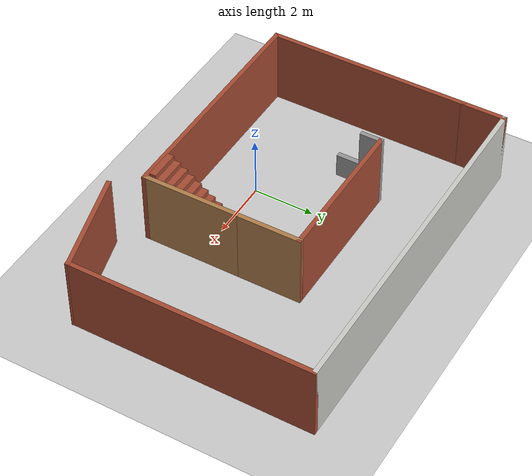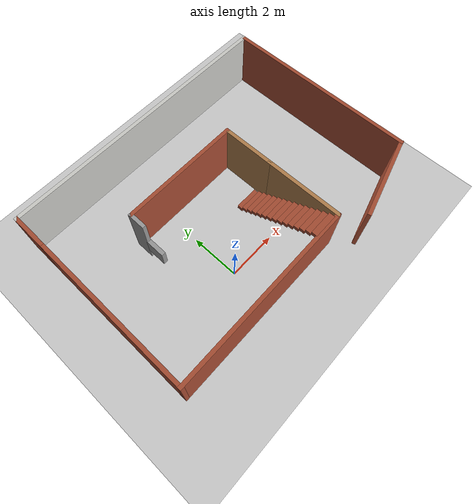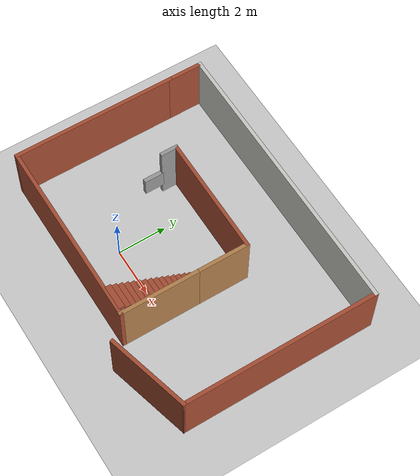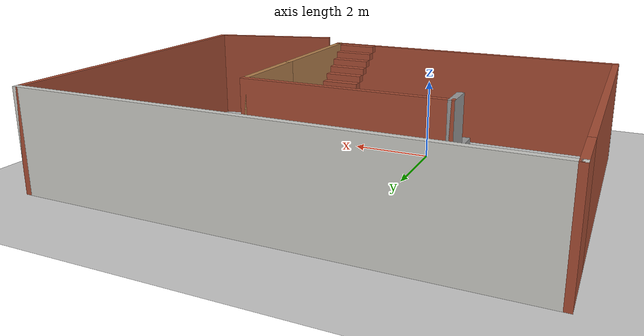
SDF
<sdf version="1.7">
 <world name="default">
  <light name="sun" type="directional">
   <pose>0 0 10 0 -0 0</pose>
   <diffuse>0.8 0.8 0.8 1</diffuse>
   <specular>0.2 0.2 0.2 1</specular>
   <attenuation>
    <range>1000</range>
    <constant>0.9</constant>
    <linear>0.01</linear>
    <quadratic>0.001</quadratic>
   </attenuation>
   <direction>-0.5 0.1 -0.9</direction>
   <spot><inner_angle>0</inner_angle><outer_angle>0</outer_angle><falloff>0</falloff></spot>
  </light>
  <model name="ground_plane">
   <static>1</static>
   <link name="link">
    <collision name="collision">
     <geometry><plane><normal>0 0 1</normal><size>100 100</size></plane></geometry>
     <surface>
      <contact><collide_bitmask>65535</collide_bitmask></contact>
      <friction><ode><mu>100</mu><mu2>50</mu2></ode></friction>
     </surface>
    </collision>
    <visual name="visual">
     <cast_shadows>0</cast_shadows>
     <geometry><plane><normal>0 0 1</normal><size>100 100</size></plane></geometry>
     <material>
      <script><uri>file://media/materials/scripts/gazebo.material</uri><name>Gazebo/Grey</name></script>
     </material>
    </visual>
   </link>
  </model>
  <gravity>0 0 -9.8</gravity>
  <magnetic_field>6e-06 2.3e-05 -4.2e-05</magnetic_field>
  <atmosphere type="adiabatic"/>
  <physics type="ode">
   <max_step_size>0.001</max_step_size>
   <real_time_factor>1</real_time_factor>
   <real_time_update_rate>1000</real_time_update_rate>
  </physics>
  <scene><ambient>0.4 0.4 0.4 1</ambient><background>0.7 0.7 0.7 1</background><shadows>1</shadows></scene>
  <spherical_coordinates>
   <surface_model>EARTH_WGS84</surface_model>
   <latitude_deg>0</latitude_deg>
   <longitude_deg>0</longitude_deg>
   <elevation>0</elevation>
   <heading_deg>0</heading_deg>
  </spherical_coordinates>
  <model name="myModel">
   <pose>1.53476 1.83643 0 0 -0 0</pose>
   <link name="Stairs_0">
    <visual name="Stairs_0_Visual_0">
     <pose>1.12473 -0.163848 0.083333 0 -0 0</pose>
     <geometry><box><size>1 0.233333 0.166667</size></box></geometry>
     <material>
      <script><uri>file://media/materials/scripts/gazebo.material</uri><name>Gazebo/Bricks</name></script>
      <ambient>1 1 1 1</ambient>
     </material>
     <meta><layer>0</layer></meta>
    </visual>
    <collision name="Stairs_0_Collision_0">
     <geometry><box><size>1 0.233333 0.166667</size></box></geometry>
     <pose>1.12473 -0.163848 0.083333 0 -0 0</pose>
    </collision>
    <visual name="Stairs_0_Visual_1">
     <pose>1.12473 -0.397181 0.25 0 -0 0</pose>
     <geometry><box><size>1 0.233333 0.166667</size></box></geometry>
     <material>
      <script><uri>file://media/materials/scripts/gazebo.material</uri><name>Gazebo/Bricks</name></script>
      <ambient>1 1 1 1</ambient>
     </material>
     <meta><layer>0</layer></meta>
    </visual>
    <collision name="Stairs_0_Collision_1">
     <geometry><box><size>1 0.233333 0.166667</size></box></geometry>
     <pose>1.12473 -0.397181 0.25 0 -0 0</pose>
    </collision>
    <visual name="Stairs_0_Visual_2">
     <pose>1.12473 -0.630514 0.416667 0 -0 0</pose>
     <geometry><box><size>1 0.233333 0.166667</size></box></geometry>
     <material>
      <script><uri>file://media/materials/scripts/gazebo.material</uri><name>Gazebo/Bricks</name></script>
      <ambient>1 1 1 1</ambient>
     </material>
     <meta><layer>0</layer></meta>
    </visual>
    <collision name="Stairs_0_Collision_2">
     <geometry><box><size>1 0.233333 0.166667</size></box></geometry>
     <pose>1.12473 -0.630514 0.416667 0 -0 0</pose>
    </collision>
    <visual name="Stairs_0_Visual_3">
     <pose>1.12473 -0.863847 0.583333 0 -0 0</pose>
     <geometry><box><size>1 0.233333 0.166667</size></box></geometry>
     <material>
      <script><uri>file://media/materials/scripts/gazebo.material</uri><name>Gazebo/Bricks</name></script>
      <ambient>1 1 1 1</ambient>
     </material>
     <meta><layer>0</layer></meta>
    </visual>
    <collision name="Stairs_0_Collision_3">
     <geometry><box><size>1 0.233333 0.166667</size></box></geometry>
     <pose>1.12473 -0.863847 0.583333 0 -0 0</pose>
    </collision>
    <visual name="Stairs_0_Visual_4">
     <pose>1.12473 -1.09718 0.75 0 -0 0</pose>
     <geometry><box><size>1 0.233333 0.166667</size></box></geometry>
     <material>
      <script><uri>file://media/materials/scripts/gazebo.material</uri><name>Gazebo/Bricks</name></script>
      <ambient>1 1 1 1</ambient>
     </material>
     <meta><layer>0</layer></meta>
    </visual>
    <collision name="Stairs_0_Collision_4">
     <geometry><box><size>1 0.233333 0.166667</size></box></geometry>
     <pose>1.12473 -1.09718 0.75 0 -0 0</pose>
    </collision>
    <visual name="Stairs_0_Visual_5">
     <pose>1.12473 -1.33051 0.916667 0 -0 0</pose>
     <geometry><box><size>1 0.233333 0.166667</size></box></geometry>
     <material>
      <script><uri>file://media/materials/scripts/gazebo.material</uri><name>Gazebo/Bricks</name></script>
      <ambient>1 1 1 1</ambient>
     </material>
     <meta><layer>0</layer></meta>
    </visual>
    <collision name="Stairs_0_Collision_5">
     <geometry><box><size>1 0.233333 0.166667</size></box></geometry>
     <pose>1.12473 -1.33051 0.916667 0 -0 0</pose>
    </collision>
    <visual name="Stairs_0_Visual_6">
     <pose>1.12473 -1.56385 1.08333 0 -0 0</pose>
     <geometry><box><size>1 0.233333 0.166667</size></box></geometry>
     <material>
      <script><uri>file://media/materials/scripts/gazebo.material</uri><name>Gazebo/Bricks</name></script>
      <ambient>1 1 1 1</ambient>
     </material>
     <meta><layer>0</layer></meta>
    </visual>
    <collision name="Stairs_0_Collision_6">
     <geometry><box><size>1 0.233333 0.166667</size></box></geometry>
     <pose>1.12473 -1.56385 1.08333 0 -0 0</pose>
    </collision>
    <visual name="Stairs_0_Visual_7">
     <pose>1.12473 -1.79718 1.25 0 -0 0</pose>
     <geometry><box><size>1 0.233333 0.166667</size></box></geometry>
     <material>
      <script><uri>file://media/materials/scripts/gazebo.material</uri><name>Gazebo/Bricks</name></script>
      <ambient>1 1 1 1</ambient>
     </material>
     <meta><layer>0</layer></meta>
    </visual>
    <collision name="Stairs_0_Collision_7">
     <geometry><box><size>1 0.233333 0.166667</size></box></geometry>
     <pose>1.12473 -1.79718 1.25 0 -0 0</pose>
    </collision>
    <visual name="Stairs_0_Visual_8">
     <pose>1.12473 -2.03051 1.41667 0 -0 0</pose>
     <geometry><box><size>1 0.233333 0.166667</size></box></geometry>
     <material>
      <script><uri>file://media/materials/scripts/gazebo.material</uri><name>Gazebo/Bricks</name></script>
      <ambient>1 1 1 1</ambient>
     </material>
     <meta><layer>0</layer></meta>
    </visual>
    <collision name="Stairs_0_Collision_8">
     <geometry><box><size>1 0.233333 0.166667</size></box></geometry>
     <pose>1.12473 -2.03051 1.41667 0 -0 0</pose>
    </collision>
    <visual name="Stairs_0_Visual_9">
     <pose>1.12473 -2.26385 1.58333 0 -0 0</pose>
     <geometry><box><size>1 0.233333 0.166667</size></box></geometry>
     <material>
      <script><uri>file://media/materials/scripts/gazebo.material</uri><name>Gazebo/Bricks</name></script>
      <ambient>1 1 1 1</ambient>
     </material>
     <meta><layer>0</layer></meta>
    </visual>
    <collision name="Stairs_0_Collision_9">
     <geometry><box><size>1 0.233333 0.166667</size></box></geometry>
     <pose>1.12473 -2.26385 1.58333 0 -0 0</pose>
    </collision>
    <visual name="Stairs_0_Visual_10">
     <pose>1.12473 -2.49718 1.75 0 -0 0</pose>
     <geometry><box><size>1 0.233333 0.166667</size></box></geometry>
     <material>
      <script><uri>file://media/materials/scripts/gazebo.material</uri><name>Gazebo/Bricks</name></script>
      <ambient>1 1 1 1</ambient>
     </material>
     <meta><layer>0</layer></meta>
    </visual>
    <collision name="Stairs_0_Collision_10">
     <geometry><box><size>1 0.233333 0.166667</size></box></geometry>
     <pose>1.12473 -2.49718 1.75 0 -0 0</pose>
    </collision>
    <visual name="Stairs_0_Visual_11">
     <pose>1.12473 -2.73051 1.91667 0 -0 0</pose>
     <geometry><box><size>1 0.233333 0.166667</size></box></geometry>
     <material>
      <script><uri>file://media/materials/scripts/gazebo.material</uri><name>Gazebo/Bricks</name></script>
      <ambient>1 1 1 1</ambient>
     </material>
     <meta><layer>0</layer></meta>
    </visual>
    <collision name="Stairs_0_Collision_11">
     <geometry><box><size>1 0.233333 0.166667</size></box></geometry>
     <pose>1.12473 -2.73051 1.91667 0 -0 0</pose>
    </collision>
    <visual name="Stairs_0_Visual_12">
     <pose>1.12473 -2.96385 2.08333 0 -0 0</pose>
     <geometry><box><size>1 0.233333 0.166667</size></box></geometry>
     <material>
      <script><uri>file://media/materials/scripts/gazebo.material</uri><name>Gazebo/Bricks</name></script>
      <ambient>1 1 1 1</ambient>
     </material>
     <meta><layer>0</layer></meta>
    </visual>
    <collision name="Stairs_0_Collision_12">
     <geometry><box><size>1 0.233333 0.166667</size></box></geometry>
     <pose>1.12473 -2.96385 2.08333 0 -0 0</pose>
    </collision>
    <visual name="Stairs_0_Visual_13">
     <pose>1.12473 -3.19718 2.25 0 -0 0</pose>
     <geometry><box><size>1 0.233333 0.166667</size></box></geometry>
     <material>
      <script><uri>file://media/materials/scripts/gazebo.material</uri><name>Gazebo/Bricks</name></script>
      <ambient>1 1 1 1</ambient>
     </material>
     <meta><layer>0</layer></meta>
    </visual>
    <collision name="Stairs_0_Collision_13">
     <geometry><box><size>1 0.233333 0.166667</size></box></geometry>
     <pose>1.12473 -3.19718 2.25 0 -0 0</pose>
    </collision>
    <visual name="Stairs_0_Visual_14">
     <pose>1.12473 -3.43051 2.41667 0 -0 0</pose>
     <geometry><box><size>1 0.233333 0.166667</size></box></geometry>
     <material>
      <script><uri>file://media/materials/scripts/gazebo.material</uri><name>Gazebo/Bricks</name></script>
      <ambient>1 1 1 1</ambient>
     </material>
     <meta><layer>0</layer></meta>
    </visual>
    <collision name="Stairs_0_Collision_14">
     <geometry><box><size>1 0.233333 0.166667</size></box></geometry>
     <pose>1.12473 -3.43051 2.41667 0 -0 0</pose>
    </collision>
   </link>
   <link name="Wall_1">
    <collision name="Wall_1_Collision">
     <geometry><box><size>0.75 0.15 2.5</size></box></geometry>
     <pose>0 0 1.25 0 -0 0</pose>
    </collision>
    <visual name="Wall_1_Visual">
     <pose>0 0 1.25 0 -0 0</pose>
     <geometry><box><size>0.75 0.15 2.5</size></box></geometry>
     <material>
      <script><uri>file://media/materials/scripts/gazebo.material</uri><name>Gazebo/Grey</name></script>
      <ambient>1 1 1 1</ambient>
     </material>
     <meta><layer>0</layer></meta>
    </visual>
    <pose>-3.05843 1.31695 0 0 -0 1.5708</pose>
   </link>
   <link name="Wall_10">
    <collision name="Wall_10_Collision">
     <geometry><box><size>8 0.15 2.5</size></box></geometry>
     <pose>0 0 1.25 0 -0 0</pose>
    </collision>
    <visual name="Wall_10_Visual">
     <pose>0 0 1.25 0 -0 0</pose>
     <geometry><box><size>8 0.15 2.5</size></box></geometry>
     <material>
      <script><uri>file://media/materials/scripts/gazebo.material</uri><name>Gazebo/Bricks</name></script>
      <ambient>1 1 1 1</ambient>
     </material>
     <meta><layer>0</layer></meta>
    </visual>
    <pose>5.79157 0.44195 0 0 -0 -1.5708</pose>
   </link>
   <link name="Wall_11">
    <collision name="Wall_11_Collision">
     <geometry><box><size>3.5 0.15 2.5</size></box></geometry>
     <pose>0 0 1.25 0 -0 0</pose>
    </collision>
    <visual name="Wall_11_Visual">
     <pose>0 0 1.25 0 -0 0</pose>
     <geometry><box><size>3.5 0.15 2.5</size></box></geometry>
     <material>
      <script><uri>file://media/materials/scripts/gazebo.material</uri><name>Gazebo/Bricks</name></script>
      <ambient>1 1 1 1</ambient>
     </material>
     <meta><layer>0</layer></meta>
    </visual>
    <pose>4.17365 -3.91657 0 0 -0 -2.87979</pose>
   </link>
   <link name="Wall_2">
    <collision name="Wall_2_Collision">
     <geometry><box><size>5 0.15 2.5</size></box></geometry>
     <pose>0 0 1.25 0 -0 0</pose>
    </collision>
    <visual name="Wall_2_Visual">
     <pose>0 0 1.25 0 -0 0</pose>
     <geometry><box><size>5 0.15 2.5</size></box></geometry>
     <material>
      <script><uri>file://media/materials/scripts/gazebo.material</uri><name>Gazebo/Bricks</name></script>
      <ambient>1 1 1 1</ambient>
     </material>
     <meta><layer>0</layer></meta>
    </visual>
    <pose>-0.633428 1.61695 0 0 -0 0</pose>
   </link>
   <link name="Wall_3">
    <collision name="Wall_3_Collision">
     <geometry><box><size>2.25 0.15 2.5</size></box></geometry>
     <pose>0 0 1.25 0 -0 0</pose>
    </collision>
    <visual name="Wall_3_Visual">
     <pose>0 0 1.25 0 -0 0</pose>
     <geometry><box><size>2.25 0.15 2.5</size></box></geometry>
     <material>
      <script><uri>file://media/materials/scripts/gazebo.material</uri><name>Gazebo/Wood</name></script>
      <ambient>1 1 1 1</ambient>
     </material>
     <meta><layer>0</layer></meta>
    </visual>
    <pose>1.79157 0.56695 0 0 -0 -1.5708</pose>
   </link>
   <link name="Wall_5">
    <collision name="Wall_5_Collision">
     <geometry><box><size>3.25 0.15 2.5</size></box></geometry>
     <pose>0 0 1.25 0 -0 0</pose>
    </collision>
    <visual name="Wall_5_Visual">
     <pose>0 0 1.25 0 -0 0</pose>
     <geometry><box><size>3.25 0.15 2.5</size></box></geometry>
     <material>
      <script><uri>file://media/materials/scripts/gazebo.material</uri><name>Gazebo/Wood</name></script>
      <ambient>1 1 1 1</ambient>
     </material>
     <meta><layer>0</layer></meta>
    </visual>
    <pose>1.79157 -2.03305 0 0 -0 -1.5708</pose>
   </link>
   <link name="Wall_6">
    <collision name="Wall_6_Collision">
     <geometry><box><size>7.75 0.15 2.5</size></box></geometry>
     <pose>0 0 1.25 0 -0 0</pose>
    </collision>
    <visual name="Wall_6_Visual">
     <pose>0 0 1.25 0 -0 0</pose>
     <geometry><box><size>7.75 0.15 2.5</size></box></geometry>
     <material>
      <script><uri>file://media/materials/scripts/gazebo.material</uri><name>Gazebo/Bricks</name></script>
      <ambient>1 1 1 1</ambient>
     </material>
     <meta><layer>0</layer></meta>
    </visual>
    <pose>-2.00843 -3.58305 0 0 -0 3.14159</pose>
   </link>
   <link name="Wall_7">
    <collision name="Wall_7_Collision">
     <geometry><box><size>6.75 0.15 2.5</size></box></geometry>
     <pose>0 0 1.25 0 -0 0</pose>
    </collision>
    <visual name="Wall_7_Visual">
     <pose>0 0 1.25 0 -0 0</pose>
     <geometry><box><size>6.75 0.15 2.5</size></box></geometry>
     <material>
      <script><uri>file://media/materials/scripts/gazebo.material</uri><name>Gazebo/Bricks</name></script>
      <ambient>1 1 1 1</ambient>
     </material>
     <meta><layer>0</layer></meta>
    </visual>
    <pose>-5.80843 -0.28305 0 0 -0 1.5708</pose>
   </link>
   <link name="Wall_8">
    <collision name="Wall_8_Collision">
     <geometry><box><size>1.5 0.15 2.5</size></box></geometry>
     <pose>0 0 1.25 0 -0 0</pose>
    </collision>
    <visual name="Wall_8_Visual">
     <pose>0 0 1.25 0 -0 0</pose>
     <geometry><box><size>1.5 0.15 2.5</size></box></geometry>
     <material>
      <script><uri>file://media/materials/scripts/gazebo.material</uri><name>Gazebo/Bricks</name></script>
      <ambient>1 1 1 1</ambient>
     </material>
     <meta><layer>0</layer></meta>
    </visual>
    <pose>-5.80843 3.69195 0 0 -0 1.5708</pose>
   </link>
   <link name="Wall_9">
    <collision name="Wall_9_Collision">
     <geometry><box><size>11.75 0.15 2.5</size></box></geometry>
     <pose>0 0 1.25 0 -0 0</pose>
    </collision>
    <visual name="Wall_9_Visual">
     <pose>0 0 1.25 0 -0 0</pose>
     <geometry><box><size>11.75 0.15 2.5</size></box></geometry>
     <material>
      <script><uri>file://media/materials/scripts/gazebo.material</uri><name>Gazebo/CeilingTiled</name></script>
      <ambient>1 1 1 1</ambient>
     </material>
     <meta><layer>0</layer></meta>
    </visual>
    <pose>-0.008428 4.36695 0 0 -0 0</pose>
   </link>
   <link name="Window_1">
    <collision name="Window_1_Collision">
     <geometry><box><size>0.8 0.17 0.8</size></box></geometry>
     <pose>0 0 0.4 0 -0 0</pose>
    </collision>
    <visual name="Window_1_Visual">
     <pose>0 0 0.4 0 -0 0</pose>
     <geometry><box><size>0.8 0.17 0.8</size></box></geometry>
     <material>
      <script><uri>file://media/materials/scripts/gazebo.material</uri><name>Gazebo/Grey</name></script>
     </material>
    </visual>
    <pose>-3.04843 0.59695 0.5 0 -0 1.5708</pose>
   </link>
   <static>1</static>
  </model>
 </world>
</sdf>
